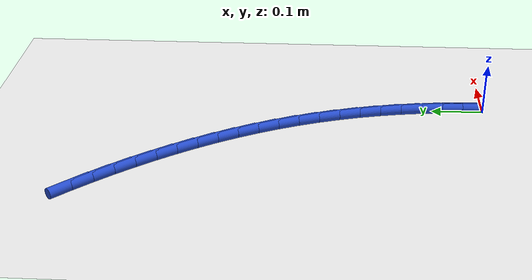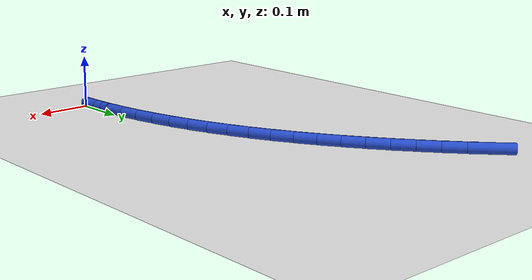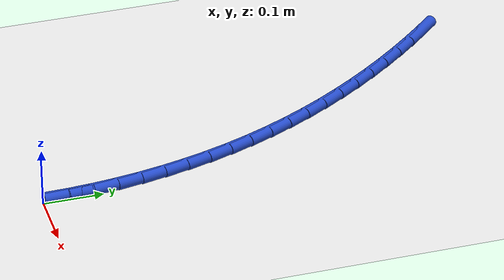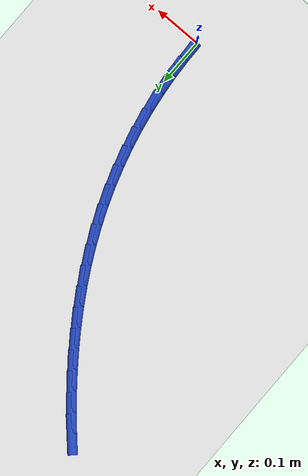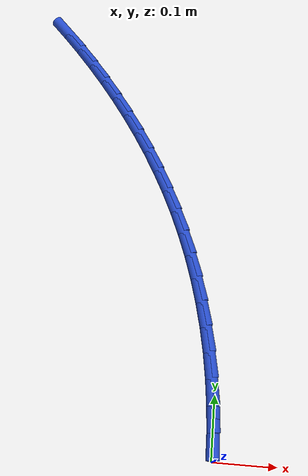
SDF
<sdf version="1.6">
 <world name="default">
  <model name="ground_plane">
   <static>1</static>
   <link name="link">
    <collision name="collision">
     <geometry><plane><normal>0 0 1</normal><size>100 100</size></plane></geometry>
     <surface><friction><ode><mu>100</mu><mu2>50</mu2></ode></friction></surface>
    </collision>
    <visual name="visual">
     <cast_shadows>0</cast_shadows>
     <geometry><plane><normal>0 0 1</normal><size>100 100</size></plane></geometry>
     <material>
      <script><uri>file://media/materials/scripts/gazebo.material</uri><name>Gazebo/WhiteGlow</name></script>
     </material>
    </visual>
   </link>
  </model>
  <model name="line">
   <link name="link_1">
    <pose>-0.0007825338649914748 0.041015290816238836 0.01 0 1.57 -1.5096912786628212</pose>
    <collision name="collision">
     <geometry><cylinder><radius>0.01</radius><length>0.08</length></cylinder></geometry>
    </collision>
    <visual name="visual">
     <material>
      <script><name>Gazebo/Blue</name><uri>file://media/materials/scripts/gazebo.material</uri></script>
     </material>
     <geometry><cylinder><radius>0.01</radius><length>0.08</length></cylinder></geometry>
    </visual>
   </link>
   <link name="link_2">
    <pose>-0.0032909838034783775 0.08201562054938584 0.01 0 1.57 -1.4680488592954692</pose>
    <collision name="collision">
     <geometry><cylinder><radius>0.01</radius><length>0.08</length></cylinder></geometry>
    </collision>
    <visual name="visual">
     <material>
      <script><name>Gazebo/Blue</name><uri>file://media/materials/scripts/gazebo.material</uri></script>
     </material>
     <geometry><cylinder><radius>0.01</radius><length>0.08</length></cylinder></geometry>
    </visual>
   </link>
   <link name="link_3">
    <pose>-0.007508788309666879 0.12292126658177949 0.01 0 1.57 -1.4266900710185564</pose>
    <collision name="collision">
     <geometry><cylinder><radius>0.01</radius><length>0.08</length></cylinder></geometry>
    </collision>
    <visual name="visual">
     <material>
      <script><name>Gazebo/Blue</name><uri>file://media/materials/scripts/gazebo.material</uri></script>
     </material>
     <geometry><cylinder><radius>0.01</radius><length>0.08</length></cylinder></geometry>
    </visual>
   </link>
   <link name="link_4">
    <pose>-0.013419385877763135 0.1636525062957585 0.01 0 1.57 -1.385511125466385</pose>
    <collision name="collision">
     <geometry><cylinder><radius>0.01</radius><length>0.08</length></cylinder></geometry>
    </collision>
    <visual name="visual">
     <material>
      <script><name>Gazebo/Blue</name><uri>file://media/materials/scripts/gazebo.material</uri></script>
     </material>
     <geometry><cylinder><radius>0.01</radius><length>0.08</length></cylinder></geometry>
    </visual>
   </link>
   <link name="link_5">
    <pose>-0.021006215001973298 0.20412961707366142 0.01 0 1.57 -1.344407390723362</pose>
    <collision name="collision">
     <geometry><cylinder><radius>0.01</radius><length>0.08</length></cylinder></geometry>
    </collision>
    <visual name="visual">
     <material>
      <script><name>Gazebo/Blue</name><uri>file://media/materials/scripts/gazebo.material</uri></script>
     </material>
     <geometry><cylinder><radius>0.01</radius><length>0.08</length></cylinder></geometry>
    </visual>
   </link>
   <link name="link_6">
    <pose>-0.030252714176503517 0.2442728762978269 0.01 0 1.57 -1.3032740299838046</pose>
    <collision name="collision">
     <geometry><cylinder><radius>0.01</radius><length>0.08</length></cylinder></geometry>
    </collision>
    <visual name="visual">
     <material>
      <script><name>Gazebo/Blue</name><uri>file://media/materials/scripts/gazebo.material</uri></script>
     </material>
     <geometry><cylinder><radius>0.01</radius><length>0.08</length></cylinder></geometry>
    </visual>
   </link>
   <link name="link_7">
    <pose>-0.04114232189555995 0.28400256135059354 0.01 0 1.57 -1.2620066119703555</pose>
    <collision name="collision">
     <geometry><cylinder><radius>0.01</radius><length>0.08</length></cylinder></geometry>
    </collision>
    <visual name="visual">
     <material>
      <script><name>Gazebo/Blue</name><uri>file://media/materials/scripts/gazebo.material</uri></script>
     </material>
     <geometry><cylinder><radius>0.01</radius><length>0.08</length></cylinder></geometry>
    </visual>
   </link>
   <link name="link_8">
    <pose>-0.053658476653348754 0.3232389496142999 0.01 0 1.57 -1.2205017367907247</pose>
    <collision name="collision">
     <geometry><cylinder><radius>0.01</radius><length>0.08</length></cylinder></geometry>
    </collision>
    <visual name="visual">
     <material>
      <script><name>Gazebo/Blue</name><uri>file://media/materials/scripts/gazebo.material</uri></script>
     </material>
     <geometry><cylinder><radius>0.01</radius><length>0.08</length></cylinder></geometry>
    </visual>
   </link>
   <link name="link_9">
    <pose>-0.06778461689388825 0.361902318532766 0.01 0 1.57 -1.1790075497419938</pose>
    <collision name="collision">
     <geometry><cylinder><radius>0.01</radius><length>0.08</length></cylinder></geometry>
    </collision>
    <visual name="visual">
     <material>
      <script><name>Gazebo/Blue</name><uri>file://media/materials/scripts/gazebo.material</uri></script>
     </material>
     <geometry><cylinder><radius>0.01</radius><length>0.08</length></cylinder></geometry>
    </visual>
   </link>
   <link name="link_10">
    <pose>-0.08349384350931358 0.3999256093298315 0.01 0 1.57 -1.1388055713313328</pose>
    <collision name="collision">
     <geometry><cylinder><radius>0.01</radius><length>0.08</length></cylinder></geometry>
    </collision>
    <visual name="visual">
     <material>
      <script><name>Gazebo/Blue</name><uri>file://media/materials/scripts/gazebo.material</uri></script>
     </material>
     <geometry><cylinder><radius>0.01</radius><length>0.08</length></cylinder></geometry>
    </visual>
   </link>
   <link name="link_11">
    <pose>-0.10071998888861775 0.43728986820535826 0.01 0 1.57 -1.100224717903958</pose>
    <collision name="collision">
     <geometry><cylinder><radius>0.01</radius><length>0.08</length></cylinder></geometry>
    </collision>
    <visual name="visual">
     <material>
      <script><name>Gazebo/Blue</name><uri>file://media/materials/scripts/gazebo.material</uri></script>
     </material>
     <geometry><cylinder><radius>0.01</radius><length>0.08</length></cylinder></geometry>
    </visual>
   </link>
   <link name="link_12">
    <pose>-0.1193875627730763 0.47398756185423796 0.01 0 1.57 -1.0632651120558072</pose>
    <collision name="collision">
     <geometry><cylinder><radius>0.01</radius><length>0.08</length></cylinder></geometry>
    </collision>
    <visual name="visual">
     <material>
      <script><name>Gazebo/Blue</name><uri>file://media/materials/scripts/gazebo.material</uri></script>
     </material>
     <geometry><cylinder><radius>0.01</radius><length>0.08</length></cylinder></geometry>
    </visual>
   </link>
   <link name="link_13">
    <pose>-0.13942107490396458 0.5100111569713619 0.01 0 1.57 -1.0279092124318145</pose>
    <collision name="collision">
     <geometry><cylinder><radius>0.01</radius><length>0.08</length></cylinder></geometry>
    </collision>
    <visual name="visual">
     <material>
      <script><name>Gazebo/Blue</name><uri>file://media/materials/scripts/gazebo.material</uri></script>
     </material>
     <geometry><cylinder><radius>0.01</radius><length>0.08</length></cylinder></geometry>
    </visual>
   </link>
   <link name="link_14">
    <pose>-0.16074503502255796 0.5453531202516212 0.01 0 1.57 -0.9941249978693737</pose>
    <collision name="collision">
     <geometry><cylinder><radius>0.01</radius><length>0.08</length></cylinder></geometry>
    </collision>
    <visual name="visual">
     <material>
      <script><name>Gazebo/Blue</name><uri>file://media/materials/scripts/gazebo.material</uri></script>
     </material>
     <geometry><cylinder><radius>0.01</radius><length>0.08</length></cylinder></geometry>
    </visual>
   </link>
   <link name="link_15">
    <pose>-0.18328395287013186 0.5800059183899077 0.01 0 1.57 -0.9618689498673286</pose>
    <collision name="collision">
     <geometry><cylinder><radius>0.01</radius><length>0.08</length></cylinder></geometry>
    </collision>
    <visual name="visual">
     <material>
      <script><name>Gazebo/Blue</name><uri>file://media/materials/scripts/gazebo.material</uri></script>
     </material>
     <geometry><cylinder><radius>0.01</radius><length>0.08</length></cylinder></geometry>
    </visual>
   </link>
   <link name="link_16">
    <pose>-0.20696233818796175 0.6139620180811122 0.01 0 1.57 -0.9310887451572291</pose>
    <collision name="collision">
     <geometry><cylinder><radius>0.01</radius><length>0.08</length></cylinder></geometry>
    </collision>
    <visual name="visual">
     <material>
      <script><name>Gazebo/Blue</name><uri>file://media/materials/scripts/gazebo.material</uri></script>
     </material>
     <geometry><cylinder><radius>0.01</radius><length>0.08</length></cylinder></geometry>
    </visual>
   </link>
   <link name="link_17">
    <pose>-0.231704700717323 0.6472138860201263 0.01 0 1.57 -0.9017256119275018</pose>
    <collision name="collision">
     <geometry><cylinder><radius>0.01</radius><length>0.08</length></cylinder></geometry>
    </collision>
    <visual name="visual">
     <material>
      <script><name>Gazebo/Blue</name><uri>file://media/materials/scripts/gazebo.material</uri></script>
     </material>
     <geometry><cylinder><radius>0.01</radius><length>0.08</length></cylinder></geometry>
    </visual>
   </link>
   <link name="link_18">
    <pose>-0.2574355501994909 0.6797539889018411 0.01 0 1.57 -0.8737163353799792</pose>
    <collision name="collision">
     <geometry><cylinder><radius>0.01</radius><length>0.08</length></cylinder></geometry>
    </collision>
    <visual name="visual">
     <material>
      <script><name>Gazebo/Blue</name><uri>file://media/materials/scripts/gazebo.material</uri></script>
     </material>
     <geometry><cylinder><radius>0.01</radius><length>0.08</length></cylinder></geometry>
    </visual>
   </link>
   <link name="link_19">
    <pose>-0.2840793963757409 0.7115747934211484 0.01 0 1.57 -0.8469949211070643</pose>
    <collision name="collision">
     <geometry><cylinder><radius>0.01</radius><length>0.08</length></cylinder></geometry>
    </collision>
    <visual name="visual">
     <material>
      <script><name>Gazebo/Blue</name><uri>file://media/materials/scripts/gazebo.material</uri></script>
     </material>
     <geometry><cylinder><radius>0.01</radius><length>0.08</length></cylinder></geometry>
    </visual>
   </link>
   <link name="link_20">
    <pose>-0.3115607489873486 0.7426687662729392 0.01 0 1.57 -0.8214939395025926</pose>
    <collision name="collision">
     <geometry><cylinder><radius>0.01</radius><length>0.08</length></cylinder></geometry>
    </collision>
    <visual name="visual">
     <material>
      <script><name>Gazebo/Blue</name><uri>file://media/materials/scripts/gazebo.material</uri></script>
     </material>
     <geometry><cylinder><radius>0.01</radius><length>0.08</length></cylinder></geometry>
    </visual>
   </link>
   <link name="link_171">
    <pose>-0.0007901846035539371 0.04102250033994168 0.01 0 1.57 -1.551536484257412</pose>
    <collision name="collision">
     <geometry><cylinder><radius>0.01</radius><length>0.08</length></cylinder></geometry>
    </collision>
    <visual name="visual">
     <material>
      <script><name>Gazebo/Blue</name><uri>file://media/materials/scripts/gazebo.material</uri></script>
     </material>
     <geometry><cylinder><radius>0.01</radius><length>0.08</length></cylinder></geometry>
    </visual>
   </link>
  </model>
 </world>
</sdf>
